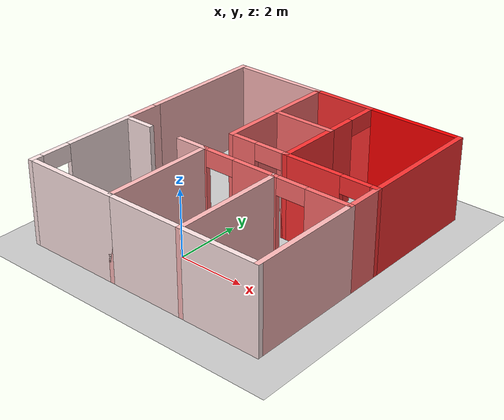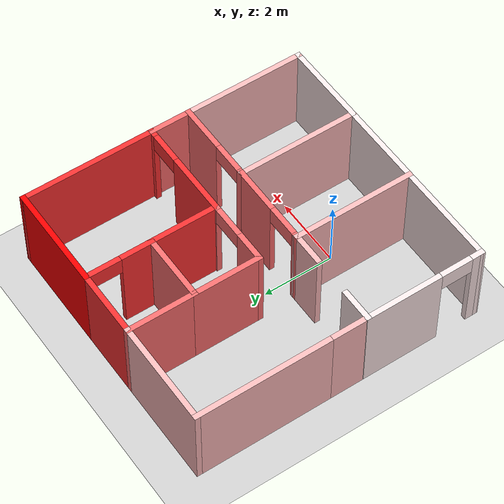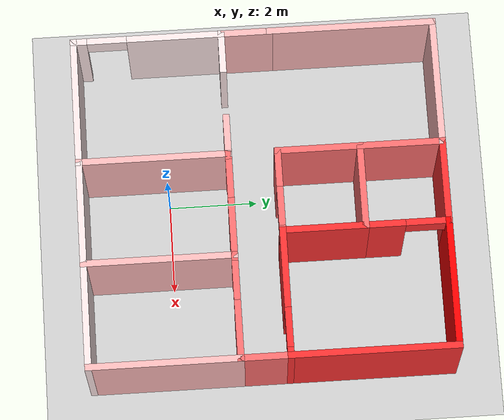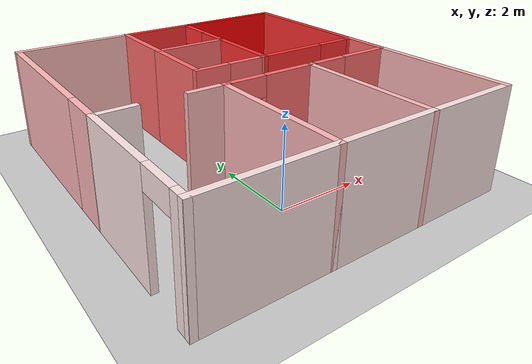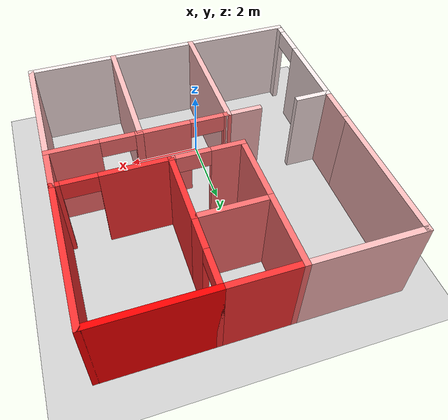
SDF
<sdf version="1.6">
 <world name="default">
  <light name="sun" type="directional">
   <pose>0 0 10 0 -0 0</pose>
   <diffuse>0.8 0.8 0.8 1</diffuse>
   <specular>0.2 0.2 0.2 1</specular>
   <attenuation>
    <range>1000</range>
    <constant>0.9</constant>
    <linear>0.01</linear>
    <quadratic>0.001</quadratic>
   </attenuation>
   <direction>-0.5 0.1 -0.9</direction>
  </light>
  <model name="ground_plane">
   <static>1</static>
   <link name="link">
    <collision name="collision">
     <geometry><plane><normal>0 0 1</normal><size>100 100</size></plane></geometry>
     <surface>
      <contact><collide_bitmask>65535</collide_bitmask></contact>
      <friction><ode><mu>100</mu><mu2>50</mu2></ode></friction>
     </surface>
    </collision>
    <visual name="visual">
     <cast_shadows>0</cast_shadows>
     <geometry><plane><normal>0 0 1</normal><size>100 100</size></plane></geometry>
     <material>
      <script><uri>file://media/materials/scripts/gazebo.material</uri><name>Gazebo/Grey</name></script>
     </material>
    </visual>
   </link>
  </model>
  <gravity>0 0 -9.8</gravity>
  <magnetic_field>6e-06 2.3e-05 -4.2e-05</magnetic_field>
  <atmosphere type="adiabatic"/>
  <physics name="default_physics" default="0" type="ode">
   <max_step_size>0.001</max_step_size>
   <real_time_factor>1</real_time_factor>
   <real_time_update_rate>1000</real_time_update_rate>
  </physics>
  <scene><ambient>0.4 0.4 0.4 1</ambient><background>0.7 0.7 0.7 1</background><shadows>1</shadows></scene>
  <audio><device>default</device></audio>
  <spherical_coordinates>
   <surface_model>EARTH_WGS84</surface_model>
   <latitude_deg>0</latitude_deg>
   <longitude_deg>0</longitude_deg>
   <elevation>0</elevation>
   <heading_deg>0</heading_deg>
  </spherical_coordinates>
  <model name="color_gradient">
   <pose>0.460108 2.13097 0 0 -0 0</pose>
   <link name="Wall_130">
    <collision name="Wall_130_Collision">
     <geometry><box><size>3 0.15 2.5</size></box></geometry>
     <pose>0 0 1.25 0 -0 0</pose>
    </collision>
    <visual name="Wall_130_Visual">
     <pose>0 0 1.25 0 -0 0</pose>
     <geometry><box><size>3 0.15 2.5</size></box></geometry>
     <material>
      <script><uri>file://media/materials/scripts/gazebo.material</uri><name>Gazebo/Grey</name></script>
      <ambient>1 0.901961 0.901961 1</ambient>
     </material>
     <meta><layer>0</layer></meta>
    </visual>
    <pose>-2.35011 -4.07497 0 0 -0 0</pose>
   </link>
   <link name="Wall_131">
    <collision name="Wall_131_Collision">
     <geometry><box><size>3.5 0.15 2.5</size></box></geometry>
     <pose>0 0 1.25 0 -0 0</pose>
    </collision>
    <visual name="Wall_131_Visual">
     <pose>0 0 1.25 0 -0 0</pose>
     <geometry><box><size>3.5 0.15 2.5</size></box></geometry>
     <material>
      <script><uri>file://media/materials/scripts/gazebo.material</uri><name>Gazebo/Grey</name></script>
      <ambient>1 0.729412 0.729412 1</ambient>
     </material>
     <meta><layer>0</layer></meta>
    </visual>
    <pose>-0.925108 -2.39997 0 0 -0 1.5708</pose>
   </link>
   <link name="Wall_133">
    <pose>-3.775 -2.39999 0 0 -0 -1.57086</pose>
    <visual name="Wall_133_Visual_0">
     <pose>-0.640692 0 1.25 0 -0 0</pose>
     <geometry><box><size>2.21862 0.15 2.5</size></box></geometry>
     <material>
      <script><uri>file://media/materials/scripts/gazebo.material</uri><name>Gazebo/Grey</name></script>
      <ambient>1 0.901961 0.901961 1</ambient>
     </material>
     <meta><layer>0</layer></meta>
    </visual>
    <collision name="Wall_133_Collision_0">
     <geometry><box><size>2.21862 0.15 2.5</size></box></geometry>
     <pose>-0.640692 0 1.25 0 -0 0</pose>
    </collision>
    <visual name="Wall_133_Visual_1">
     <pose>1.55931 0 1.25 0 -0 0</pose>
     <geometry><box><size>0.381384 0.15 2.5</size></box></geometry>
     <material>
      <script><uri>file://media/materials/scripts/gazebo.material</uri><name>Gazebo/Grey</name></script>
      <ambient>1 0.901961 0.901961 1</ambient>
     </material>
     <meta><layer>0</layer></meta>
    </visual>
    <collision name="Wall_133_Collision_1">
     <geometry><box><size>0.381384 0.15 2.5</size></box></geometry>
     <pose>1.55931 0 1.25 0 -0 0</pose>
    </collision>
    <visual name="Wall_133_Visual_2">
     <pose>0.918616 0 2.25 0 -0 0</pose>
     <geometry><box><size>0.9 0.15 0.5</size></box></geometry>
     <material>
      <script><uri>file://media/materials/scripts/gazebo.material</uri><name>Gazebo/Grey</name></script>
      <ambient>1 0.901961 0.901961 1</ambient>
     </material>
     <meta><layer>0</layer></meta>
    </visual>
    <collision name="Wall_133_Collision_2">
     <geometry><box><size>0.9 0.15 0.5</size></box></geometry>
     <pose>0.918616 0 2.25 0 -0 0</pose>
    </collision>
   </link>
   <link name="Wall_136">
    <collision name="Wall_136_Collision">
     <geometry><box><size>1.25 0.15 2.5</size></box></geometry>
     <pose>0 0 1.25 0 -0 0</pose>
    </collision>
    <visual name="Wall_136_Visual">
     <pose>0 0 1.25 0 -0 0</pose>
     <geometry><box><size>1.25 0.15 2.5</size></box></geometry>
     <material>
      <script><uri>file://media/materials/scripts/gazebo.material</uri><name>Gazebo/Grey</name></script>
      <ambient>1 0.729412 0.729412 1</ambient>
     </material>
     <meta><layer>0</layer></meta>
    </visual>
    <pose>-3.77489 -0.175 0 0 -0 1.5708</pose>
   </link>
   <link name="Wall_138">
    <pose>0.000113 0.375 0 0 -0 0</pose>
    <visual name="Wall_138_Visual_0">
     <pose>-0.543212 0 1.25 0 -0 0</pose>
     <geometry><box><size>0.913576 0.15 2.5</size></box></geometry>
     <material>
      <script><uri>file://media/materials/scripts/gazebo.material</uri><name>Gazebo/Grey</name></script>
      <ambient>1 0.431373 0.431373 1</ambient>
     </material>
     <meta><layer>0</layer></meta>
    </visual>
    <collision name="Wall_138_Collision_0">
     <geometry><box><size>0.913576 0.15 2.5</size></box></geometry>
     <pose>-0.543212 0 1.25 0 -0 0</pose>
    </collision>
    <visual name="Wall_138_Visual_1">
     <pose>0.906788 0 1.25 0 -0 0</pose>
     <geometry><box><size>0.186424 0.15 2.5</size></box></geometry>
     <material>
      <script><uri>file://media/materials/scripts/gazebo.material</uri><name>Gazebo/Grey</name></script>
      <ambient>1 0.431373 0.431373 1</ambient>
     </material>
     <meta><layer>0</layer></meta>
    </visual>
    <collision name="Wall_138_Collision_1">
     <geometry><box><size>0.186424 0.15 2.5</size></box></geometry>
     <pose>0.906788 0 1.25 0 -0 0</pose>
    </collision>
    <visual name="Wall_138_Visual_2">
     <pose>0.363576 0 2.25 0 -0 0</pose>
     <geometry><box><size>0.9 0.15 0.5</size></box></geometry>
     <material>
      <script><uri>file://media/materials/scripts/gazebo.material</uri><name>Gazebo/Grey</name></script>
      <ambient>1 0.431373 0.431373 1</ambient>
     </material>
     <meta><layer>0</layer></meta>
    </visual>
    <collision name="Wall_138_Collision_2">
     <geometry><box><size>0.9 0.15 0.5</size></box></geometry>
     <pose>0.363576 0 2.25 0 -0 0</pose>
    </collision>
   </link>
   <link name="Wall_139">
    <pose>2.35011 0.375 0 0 -0 0</pose>
    <visual name="Wall_139_Visual_0">
     <pose>-0.579714 0 1.25 0 -0 0</pose>
     <geometry><box><size>1.84057 0.15 2.5</size></box></geometry>
     <material>
      <script><uri>file://media/materials/scripts/gazebo.material</uri><name>Gazebo/Grey</name></script>
      <ambient>1 0.192157 0.192157 1</ambient>
     </material>
     <meta><layer>0</layer></meta>
    </visual>
    <collision name="Wall_139_Collision_0">
     <geometry><box><size>1.84057 0.15 2.5</size></box></geometry>
     <pose>-0.579714 0 1.25 0 -0 0</pose>
    </collision>
    <visual name="Wall_139_Visual_1">
     <pose>1.37029 0 1.25 0 -0 0</pose>
     <geometry><box><size>0.259427 0.15 2.5</size></box></geometry>
     <material>
      <script><uri>file://media/materials/scripts/gazebo.material</uri><name>Gazebo/Grey</name></script>
      <ambient>1 0.192157 0.192157 1</ambient>
     </material>
     <meta><layer>0</layer></meta>
    </visual>
    <collision name="Wall_139_Collision_1">
     <geometry><box><size>0.259427 0.15 2.5</size></box></geometry>
     <pose>1.37029 0 1.25 0 -0 0</pose>
    </collision>
    <visual name="Wall_139_Visual_2">
     <pose>0.790573 0 2.25 0 -0 0</pose>
     <geometry><box><size>0.9 0.15 0.5</size></box></geometry>
     <material>
      <script><uri>file://media/materials/scripts/gazebo.material</uri><name>Gazebo/Grey</name></script>
      <ambient>1 0.192157 0.192157 1</ambient>
     </material>
     <meta><layer>0</layer></meta>
    </visual>
    <collision name="Wall_139_Collision_2">
     <geometry><box><size>0.9 0.15 0.5</size></box></geometry>
     <pose>0.790573 0 2.25 0 -0 0</pose>
    </collision>
   </link>
   <link name="Wall_140">
    <collision name="Wall_140_Collision">
     <geometry><box><size>1.25 0.15 2.5</size></box></geometry>
     <pose>0 0 1.25 0 -0 0</pose>
    </collision>
    <visual name="Wall_140_Visual">
     <pose>0 0 1.25 0 -0 0</pose>
     <geometry><box><size>1.25 0.15 2.5</size></box></geometry>
     <material>
      <script><uri>file://media/materials/scripts/gazebo.material</uri><name>Gazebo/Grey</name></script>
      <ambient>1 0.431373 0.431373 1</ambient>
     </material>
     <meta><layer>0</layer></meta>
    </visual>
    <pose>3.77511 -0.175 0 0 -0 -1.5708</pose>
   </link>
   <link name="Wall_141">
    <pose>2.60011 -0.725 0 0 -0 3.14159</pose>
    <visual name="Wall_141_Visual_0">
     <pose>-0.55169 0 1.25 0 -0 0</pose>
     <geometry><box><size>1.39662 0.15 2.5</size></box></geometry>
     <material>
      <script><uri>file://media/materials/scripts/gazebo.material</uri><name>Gazebo/Grey</name></script>
      <ambient>1 0.431373 0.431373 1</ambient>
     </material>
     <meta><layer>0</layer></meta>
    </visual>
    <collision name="Wall_141_Collision_0">
     <geometry><box><size>1.39662 0.15 2.5</size></box></geometry>
     <pose>-0.55169 0 1.25 0 -0 0</pose>
    </collision>
    <visual name="Wall_141_Visual_1">
     <pose>1.14831 0 1.25 0 -0 0</pose>
     <geometry><box><size>0.20338 0.15 2.5</size></box></geometry>
     <material>
      <script><uri>file://media/materials/scripts/gazebo.material</uri><name>Gazebo/Grey</name></script>
      <ambient>1 0.431373 0.431373 1</ambient>
     </material>
     <meta><layer>0</layer></meta>
    </visual>
    <collision name="Wall_141_Collision_1">
     <geometry><box><size>0.20338 0.15 2.5</size></box></geometry>
     <pose>1.14831 0 1.25 0 -0 0</pose>
    </collision>
    <visual name="Wall_141_Visual_2">
     <pose>0.59662 0 2.25 0 -0 0</pose>
     <geometry><box><size>0.9 0.15 0.5</size></box></geometry>
     <material>
      <script><uri>file://media/materials/scripts/gazebo.material</uri><name>Gazebo/Grey</name></script>
      <ambient>1 0.431373 0.431373 1</ambient>
     </material>
     <meta><layer>0</layer></meta>
    </visual>
    <collision name="Wall_141_Collision_2">
     <geometry><box><size>0.9 0.15 0.5</size></box></geometry>
     <pose>0.59662 0 2.25 0 -0 0</pose>
    </collision>
   </link>
   <link name="Wall_142">
    <collision name="Wall_142_Collision">
     <geometry><box><size>3.5 0.15 2.5</size></box></geometry>
     <pose>0 0 1.25 0 -0 0</pose>
    </collision>
    <visual name="Wall_142_Visual">
     <pose>0 0 1.25 0 -0 0</pose>
     <geometry><box><size>3.5 0.15 2.5</size></box></geometry>
     <material>
      <script><uri>file://media/materials/scripts/gazebo.material</uri><name>Gazebo/Grey</name></script>
      <ambient>1 0.729412 0.729412 1</ambient>
     </material>
     <meta><layer>0</layer></meta>
    </visual>
    <pose>1.42511 -2.4 0 0 -0 -1.5708</pose>
   </link>
   <link name="Wall_144">
    <collision name="Wall_144_Collision">
     <geometry><box><size>3.5 0.15 2.5</size></box></geometry>
     <pose>0 0 1.25 0 -0 0</pose>
    </collision>
    <visual name="Wall_144_Visual">
     <pose>0 0 1.25 0 -0 0</pose>
     <geometry><box><size>3.5 0.15 2.5</size></box></geometry>
     <material>
      <script><uri>file://media/materials/scripts/gazebo.material</uri><name>Gazebo/Grey</name></script>
      <ambient>1 0.729412 0.729412 1</ambient>
     </material>
     <meta><layer>0</layer></meta>
    </visual>
    <pose>3.77511 -2.4 0 0 -0 -1.5708</pose>
   </link>
   <link name="Wall_145">
    <collision name="Wall_145_Collision">
     <geometry><box><size>2.5 0.15 2.5</size></box></geometry>
     <pose>0 0 1.25 0 -0 0</pose>
    </collision>
    <visual name="Wall_145_Visual">
     <pose>0 0 1.25 0 -0 0</pose>
     <geometry><box><size>2.5 0.15 2.5</size></box></geometry>
     <material>
      <script><uri>file://media/materials/scripts/gazebo.material</uri><name>Gazebo/Grey</name></script>
      <ambient>1 0.901961 0.901961 1</ambient>
     </material>
     <meta><layer>0</layer></meta>
    </visual>
    <pose>2.60011 -4.075 0 0 -0 3.14159</pose>
   </link>
   <link name="Wall_146">
    <collision name="Wall_146_Collision">
     <geometry><box><size>2.50022 0.15 2.5</size></box></geometry>
     <pose>0 0 1.25 0 -0 0</pose>
    </collision>
    <visual name="Wall_146_Visual">
     <pose>0 0 1.25 0 -0 0</pose>
     <geometry><box><size>2.50022 0.15 2.5</size></box></geometry>
     <material>
      <script><uri>file://media/materials/scripts/gazebo.material</uri><name>Gazebo/Grey</name></script>
      <ambient>1 0.901961 0.901961 1</ambient>
     </material>
     <meta><layer>0</layer></meta>
    </visual>
    <pose>0.250003 -4.07498 0 0 -0 3.14158</pose>
   </link>
   <link name="Wall_148">
    <pose>0.250003 -0.724985 0 0 -0 -1.3e-05</pose>
    <visual name="Wall_148_Visual_0">
     <pose>-1.14765 0 1.25 0 -0 0</pose>
     <geometry><box><size>0.204927 0.15 2.5</size></box></geometry>
     <material>
      <script><uri>file://media/materials/scripts/gazebo.material</uri><name>Gazebo/Grey</name></script>
      <ambient>1 0.431373 0.431373 1</ambient>
     </material>
     <meta><layer>0</layer></meta>
    </visual>
    <collision name="Wall_148_Collision_0">
     <geometry><box><size>0.204927 0.15 2.5</size></box></geometry>
     <pose>-1.14765 0 1.25 0 -0 0</pose>
    </collision>
    <visual name="Wall_148_Visual_1">
     <pose>0.552463 0 1.25 0 -0 0</pose>
     <geometry><box><size>1.39529 0.15 2.5</size></box></geometry>
     <material>
      <script><uri>file://media/materials/scripts/gazebo.material</uri><name>Gazebo/Grey</name></script>
      <ambient>1 0.431373 0.431373 1</ambient>
     </material>
     <meta><layer>0</layer></meta>
    </visual>
    <collision name="Wall_148_Collision_1">
     <geometry><box><size>1.39529 0.15 2.5</size></box></geometry>
     <pose>0.552463 0 1.25 0 -0 0</pose>
    </collision>
    <visual name="Wall_148_Visual_2">
     <pose>-0.595184 0 2.25 0 -0 0</pose>
     <geometry><box><size>0.9 0.15 0.5</size></box></geometry>
     <material>
      <script><uri>file://media/materials/scripts/gazebo.material</uri><name>Gazebo/Grey</name></script>
      <ambient>1 0.431373 0.431373 1</ambient>
     </material>
     <meta><layer>0</layer></meta>
    </visual>
    <collision name="Wall_148_Collision_2">
     <geometry><box><size>0.9 0.15 0.5</size></box></geometry>
     <pose>-0.595184 0 2.25 0 -0 0</pose>
    </collision>
   </link>
   <link name="Wall_150">
    <collision name="Wall_150_Collision">
     <geometry><box><size>2 0.15 2.5</size></box></geometry>
     <pose>0 0 1.25 0 -0 0</pose>
    </collision>
    <visual name="Wall_150_Visual">
     <pose>0 0 1.25 0 -0 0</pose>
     <geometry><box><size>2 0.15 2.5</size></box></geometry>
     <material>
      <script><uri>file://media/materials/scripts/gazebo.material</uri><name>Gazebo/Grey</name></script>
      <ambient>1 0.431373 0.431373 1</ambient>
     </material>
     <meta><layer>0</layer></meta>
    </visual>
    <pose>-0.924887 1.3 0 0 -0 1.5708</pose>
   </link>
   <link name="Wall_151">
    <collision name="Wall_151_Collision">
     <geometry><box><size>2 0.15 2.5</size></box></geometry>
     <pose>0 0 1.25 0 -0 0</pose>
    </collision>
    <visual name="Wall_151_Visual">
     <pose>0 0 1.25 0 -0 0</pose>
     <geometry><box><size>2 0.15 2.5</size></box></geometry>
     <material>
      <script><uri>file://media/materials/scripts/gazebo.material</uri><name>Gazebo/Grey</name></script>
      <ambient>1 0.431373 0.431373 1</ambient>
     </material>
     <meta><layer>0</layer></meta>
    </visual>
    <pose>0.000113 2.225 0 0 -0 0</pose>
   </link>
   <link name="Wall_152">
    <collision name="Wall_152_Collision">
     <geometry><box><size>2 0.15 2.5</size></box></geometry>
     <pose>0 0 1.25 0 -0 0</pose>
    </collision>
    <visual name="Wall_152_Visual">
     <pose>0 0 1.25 0 -0 0</pose>
     <geometry><box><size>2 0.15 2.5</size></box></geometry>
     <material>
      <script><uri>file://media/materials/scripts/gazebo.material</uri><name>Gazebo/Grey</name></script>
      <ambient>1 0.192157 0.192157 1</ambient>
     </material>
     <meta><layer>0</layer></meta>
    </visual>
    <pose>0.925113 1.3 0 0 -0 -1.5708</pose>
   </link>
   <link name="Wall_154">
    <collision name="Wall_154_Collision">
     <geometry><box><size>2 0.15 2.5</size></box></geometry>
     <pose>0 0 1.25 0 -0 0</pose>
    </collision>
    <visual name="Wall_154_Visual">
     <pose>0 0 1.25 0 -0 0</pose>
     <geometry><box><size>2 0.15 2.5</size></box></geometry>
     <material>
      <script><uri>file://media/materials/scripts/gazebo.material</uri><name>Gazebo/Grey</name></script>
      <ambient>1 0.431373 0.431373 1</ambient>
     </material>
     <meta><layer>0</layer></meta>
    </visual>
    <pose>-0.924887 3.15 0 0 -0 1.5708</pose>
   </link>
   <link name="Wall_155">
    <collision name="Wall_155_Collision">
     <geometry><box><size>2 0.15 2.5</size></box></geometry>
     <pose>0 0 1.25 0 -0 0</pose>
    </collision>
    <visual name="Wall_155_Visual">
     <pose>0 0 1.25 0 -0 0</pose>
     <geometry><box><size>2 0.15 2.5</size></box></geometry>
     <material>
      <script><uri>file://media/materials/scripts/gazebo.material</uri><name>Gazebo/Grey</name></script>
      <ambient>1 0.192157 0.192157 1</ambient>
     </material>
     <meta><layer>0</layer></meta>
    </visual>
    <pose>0.000113 4.075 0 0 -0 0</pose>
   </link>
   <link name="Wall_156">
    <pose>0.925113 3.15 0 0 -0 -1.5708</pose>
    <visual name="Wall_156_Visual_0">
     <pose>-0.931757 0 1.25 0 -0 0</pose>
     <geometry><box><size>0.136486 0.15 2.5</size></box></geometry>
     <material>
      <script><uri>file://media/materials/scripts/gazebo.material</uri><name>Gazebo/Grey</name></script>
      <ambient>1 0.192157 0.192157 1</ambient>
     </material>
     <meta><layer>0</layer></meta>
    </visual>
    <collision name="Wall_156_Collision_0">
     <geometry><box><size>0.136486 0.15 2.5</size></box></geometry>
     <pose>-0.931757 0 1.25 0 -0 0</pose>
    </collision>
    <visual name="Wall_156_Visual_1">
     <pose>0.518243 0 1.25 0 -0 0</pose>
     <geometry><box><size>0.963514 0.15 2.5</size></box></geometry>
     <material>
      <script><uri>file://media/materials/scripts/gazebo.material</uri><name>Gazebo/Grey</name></script>
      <ambient>1 0.192157 0.192157 1</ambient>
     </material>
     <meta><layer>0</layer></meta>
    </visual>
    <collision name="Wall_156_Collision_1">
     <geometry><box><size>0.963514 0.15 2.5</size></box></geometry>
     <pose>0.518243 0 1.25 0 -0 0</pose>
    </collision>
    <visual name="Wall_156_Visual_2">
     <pose>-0.413514 0 2.25 0 -0 0</pose>
     <geometry><box><size>0.9 0.15 0.5</size></box></geometry>
     <material>
      <script><uri>file://media/materials/scripts/gazebo.material</uri><name>Gazebo/Grey</name></script>
      <ambient>1 0.192157 0.192157 1</ambient>
     </material>
     <meta><layer>0</layer></meta>
    </visual>
    <collision name="Wall_156_Collision_2">
     <geometry><box><size>0.9 0.15 0.5</size></box></geometry>
     <pose>-0.413514 0 2.25 0 -0 0</pose>
    </collision>
   </link>
   <link name="Wall_158">
    <collision name="Wall_158_Collision">
     <geometry><box><size>3 0.15 2.5</size></box></geometry>
     <pose>0 0 1.25 0 -0 0</pose>
    </collision>
    <visual name="Wall_158_Visual">
     <pose>0 0 1.25 0 -0 0</pose>
     <geometry><box><size>3 0.15 2.5</size></box></geometry>
     <material>
      <script><uri>file://media/materials/scripts/gazebo.material</uri><name>Gazebo/Grey</name></script>
      <ambient>1 0 0 1</ambient>
     </material>
     <meta><layer>0</layer></meta>
    </visual>
    <pose>2.35011 4.075 0 0 -0 0</pose>
   </link>
   <link name="Wall_159">
    <collision name="Wall_159_Collision">
     <geometry><box><size>3.85 0.15 2.5</size></box></geometry>
     <pose>0 0 1.25 0 -0 0</pose>
    </collision>
    <visual name="Wall_159_Visual">
     <pose>0 0 1.25 0 -0 0</pose>
     <geometry><box><size>3.85 0.15 2.5</size></box></geometry>
     <material>
      <script><uri>file://media/materials/scripts/gazebo.material</uri><name>Gazebo/Grey</name></script>
      <ambient>1 0.192157 0.192157 1</ambient>
     </material>
     <meta><layer>0</layer></meta>
    </visual>
    <pose>3.77511 2.225 0 0 -0 -1.5708</pose>
   </link>
   <link name="Wall_161">
    <collision name="Wall_161_Collision">
     <geometry><box><size>3 0.15 2.5</size></box></geometry>
     <pose>0 0 1.25 0 -0 0</pose>
    </collision>
    <visual name="Wall_161_Visual">
     <pose>0 0 1.25 0 -0 0</pose>
     <geometry><box><size>3 0.15 2.5</size></box></geometry>
     <material>
      <script><uri>file://media/materials/scripts/gazebo.material</uri><name>Gazebo/Grey</name></script>
      <ambient>1 0.729412 0.729412 1</ambient>
     </material>
     <meta><layer>0</layer></meta>
    </visual>
    <pose>-2.34989 4.075 0 0 -0 3.14159</pose>
   </link>
   <link name="Wall_162">
    <collision name="Wall_162_Collision">
     <geometry><box><size>3.85 0.15 2.5</size></box></geometry>
     <pose>0 0 1.25 0 -0 0</pose>
    </collision>
    <visual name="Wall_162_Visual">
     <pose>0 0 1.25 0 -0 0</pose>
     <geometry><box><size>3.85 0.15 2.5</size></box></geometry>
     <material>
      <script><uri>file://media/materials/scripts/gazebo.material</uri><name>Gazebo/Grey</name></script>
      <ambient>1 0.729412 0.729412 1</ambient>
     </material>
     <meta><layer>0</layer></meta>
    </visual>
    <pose>-3.77489 2.225 0 0 -0 -1.5708</pose>
   </link>
   <link name="Wall_168">
    <collision name="Wall_168_Collision">
     <geometry><box><size>1 0.15 2.5</size></box></geometry>
     <pose>0 0 1.25 0 -0 0</pose>
    </collision>
    <visual name="Wall_168_Visual">
     <pose>0 0 1.25 0 -0 0</pose>
     <geometry><box><size>1 0.15 2.5</size></box></geometry>
     <material>
      <script><uri>file://media/materials/scripts/gazebo.material</uri><name>Gazebo/Grey</name></script>
      <ambient>1 0.729412 0.729412 1</ambient>
     </material>
     <meta><layer>0</layer></meta>
    </visual>
    <pose>-1.35011 -0.72497 0 0 -0 3.14159</pose>
   </link>
   <link name="Wall_170">
    <collision name="Wall_170_Collision">
     <geometry><box><size>1 0.15 2.5</size></box></geometry>
     <pose>0 0 1.25 0 -0 0</pose>
    </collision>
    <visual name="Wall_170_Visual">
     <pose>0 0 1.25 0 -0 0</pose>
     <geometry><box><size>1 0.15 2.5</size></box></geometry>
     <material>
      <script><uri>file://media/materials/scripts/gazebo.material</uri><name>Gazebo/Grey</name></script>
      <ambient>1 0.901961 0.901961 1</ambient>
     </material>
     <meta><layer>0</layer></meta>
    </visual>
    <pose>-3.34989 -0.725 0 0 -0 0</pose>
   </link>
   <static>1</static>
  </model>
 </world>
</sdf>
